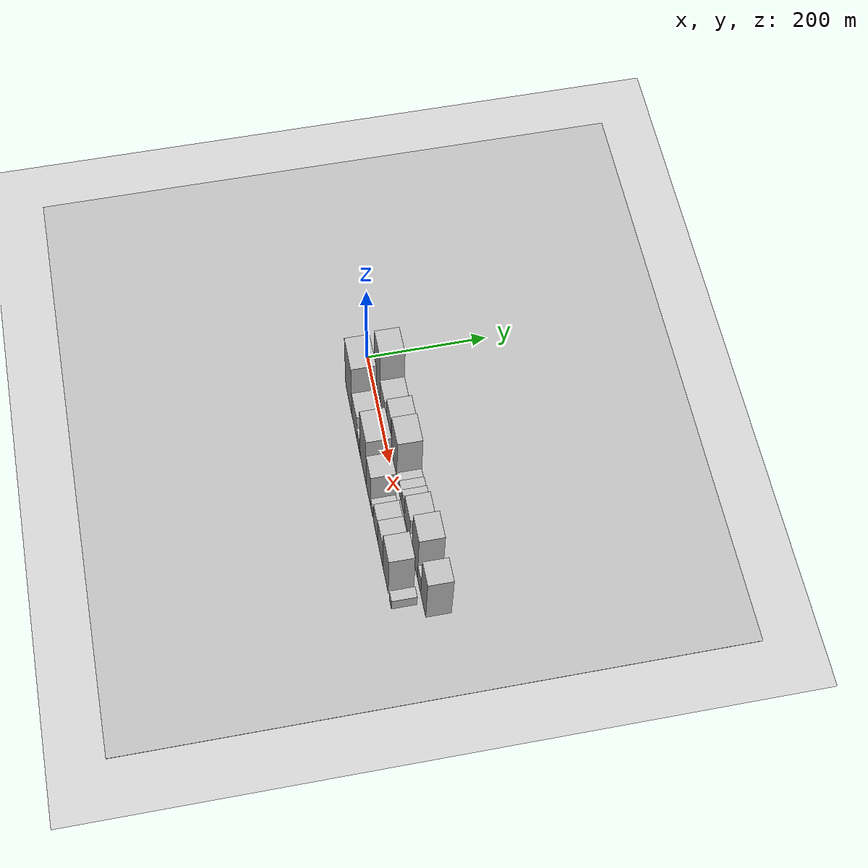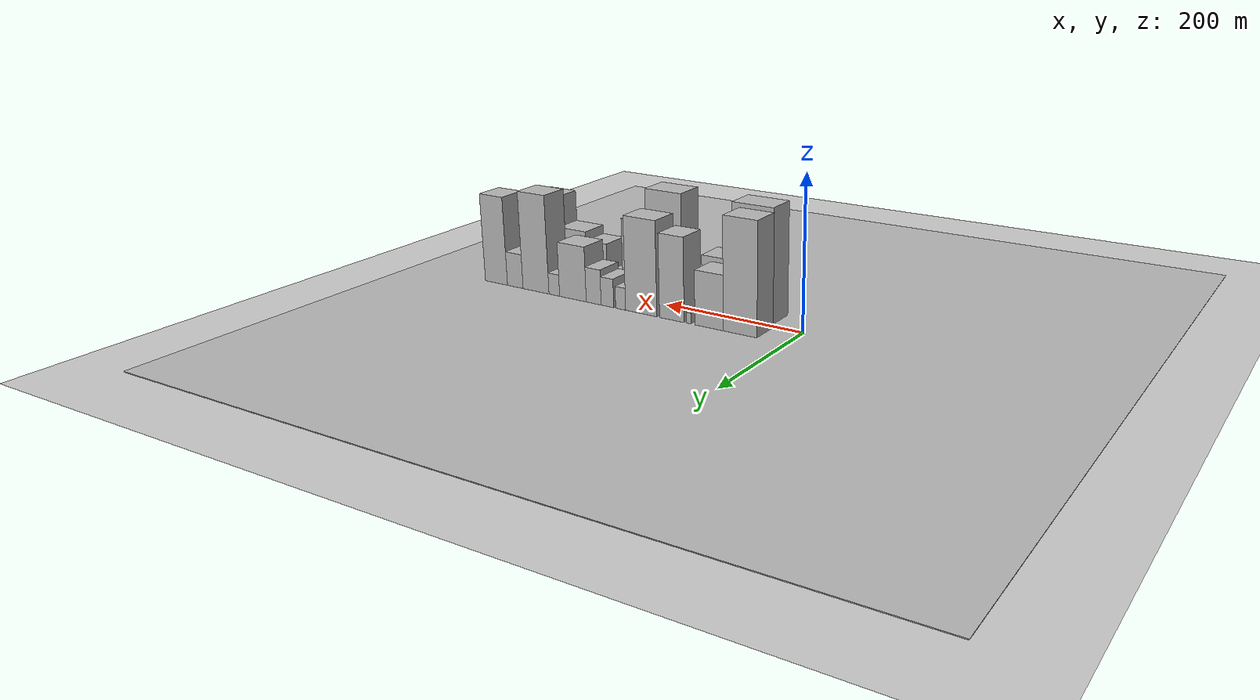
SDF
<?xml version="1.0" encoding="utf-8"?>

<sdf version="1.6">

   <world name="default">

      <gui fullscreen="0">

         <camera name="user_camera">

            <pose>-15 0 4.57585 0 0 0</pose>

            <view_controller>orbit</view_controller>

         </camera>

      </gui>

      <scene>

         <sky>

           <clouds>

             <speed>12</speed>

           </clouds>

         </sky>

         <ambient>0.4 0.4 0.4 1</ambient>

         <background>0.7 0.7 0.7 1</background>

         <shadows>1</shadows>

      </scene>

      <gravity>0 0 -9.8066</gravity>

      <magnetic_field>6e-06 2.3e-05 -4.2e-05</magnetic_field>

      <physics default="0" name="default_physics" type="ode">

         <ode>

            <solver>

               <type>quick</type>

               <iters>10</iters>

               <sor>1.0</sor>

               <use_dynamic_moi_rescaling>0</use_dynamic_moi_rescaling>

            </solver>

            <constraints>

               <cfm>0</cfm>

               <erp>0.2</erp>

               <contact_max_correcting_vel>100</contact_max_correcting_vel>

               <contact_surface_layer>0.001</contact_surface_layer>

            </constraints>

         </ode>

         <max_step_size>0.004</max_step_size>

         <real_time_factor>1</real_time_factor>

         <real_time_update_rate>250</real_time_update_rate>

      </physics>

      <light name="sun" type="directional">

         <cast_shadows>1</cast_shadows>

         <pose>0 0 10 0 0 0</pose>

         <diffuse>0.8 0.8 0.8 1</diffuse>

         <specular>0.2 0.2 0.2 1</specular>

         <attenuation>

            <range>1000</range>

            <constant>0.9</constant>

            <linear>0.01</linear>

            <quadratic>0.001</quadratic>

         </attenuation>

         <direction>-0.5 0.1 -0.9</direction>

      </light>

      <include>

         <name>ground_plane_1</name>

         <uri>model://HANNAS_ground_plane</uri>

         <pose>0 0 0  0 0 0</pose>

      </include>

      <include>

         <name>ground_plane_2</name>

         <uri>model://HANNAS_ground_plane</uri>

         <pose>100 0 0  0 0 0</pose>

      </include>

      <model name="building_1">

         <static>1</static>

         <pose frame="">63.9267 24.5000 0 0.000000 0.000000 1.570796</pose>

         <link name="link">

            <pose frame="">0 0 73.50 0 0 0</pose>

            <collision name="collision">

               <geometry>

                  <box>

                     <size>40.0000 47.8533 147.0000</size>

                  </box>

               </geometry>

               <max_contacts>10</max_contacts>

               <surface>

                  <contact>

                     <ode/>

                  </contact>

                  <bounce/>

                  <friction>

                     <torsional>

                        <ode/>

                     </torsional>

                     <ode/>

                  </friction>

               </surface>

            </collision>

            <visual name="visual">

               <cast_shadows>0</cast_shadows>

               <geometry>

                  <box>

                     <size>40.0000 47.8533 147.0000</size>

                  </box>

               </geometry>

               <material>

                  <script>

                     <uri>model://HANNAS_wall/materials/scripts</uri>

                     <uri>model://HANNAS_wall/materials/textures</uri>

                     <name>vrc/HANNAS_wall</name>

                  </script>

               </material>

            </visual>

            <self_collide>0</self_collide>

            <enable_wind>0</enable_wind>

            <kinematic>0</kinematic>

         </link>

      </model>

      <model name="building_2">

         <static>1</static>

         <pose frame="">108.2276 24.5000 0 0.000000 0.000000 1.570796</pose>

         <link name="link">

            <pose frame="">0 0 36.00 0 0 0</pose>

            <collision name="collision">

               <geometry>

                  <box>

                     <size>40.0000 40.7487 72.0000</size>

                  </box>

               </geometry>

               <max_contacts>10</max_contacts>

               <surface>

                  <contact>

                     <ode/>

                  </contact>

                  <bounce/>

                  <friction>

                     <torsional>

                        <ode/>

                     </torsional>

                     <ode/>

                  </friction>

               </surface>

            </collision>

            <visual name="visual">

               <cast_shadows>0</cast_shadows>

               <geometry>

                  <box>

                     <size>40.0000 40.7487 72.0000</size>

                  </box>

               </geometry>

               <material>

                  <script>

                     <uri>model://HANNAS_wall/materials/scripts</uri>

                     <uri>model://HANNAS_wall/materials/textures</uri>

                     <name>vrc/HANNAS_wall</name>

                  </script>

               </material>

            </visual>

            <self_collide>0</self_collide>

            <enable_wind>0</enable_wind>

            <kinematic>0</kinematic>

         </link>

      </model>

      <model name="building_3">

         <static>1</static>

         <pose frame="">138.0149 24.5000 0 0.000000 0.000000 1.570796</pose>

         <link name="link">

            <pose frame="">0 0 7.50 0 0 0</pose>

            <collision name="collision">

               <geometry>

                  <box>

                     <size>40.0000 6.8259 15.0000</size>

                  </box>

               </geometry>

               <max_contacts>10</max_contacts>

               <surface>

                  <contact>

                     <ode/>

                  </contact>

                  <bounce/>

                  <friction>

                     <torsional>

                        <ode/>

                     </torsional>

                     <ode/>

                  </friction>

               </surface>

            </collision>

            <visual name="visual">

               <cast_shadows>0</cast_shadows>

               <geometry>

                  <box>

                     <size>40.0000 6.8259 15.0000</size>

                  </box>

               </geometry>

               <material>

                  <script>

                     <uri>model://HANNAS_wall/materials/scripts</uri>

                     <uri>model://HANNAS_wall/materials/textures</uri>

                     <name>vrc/HANNAS_wall</name>

                  </script>

               </material>

            </visual>

            <self_collide>0</self_collide>

            <enable_wind>0</enable_wind>

            <kinematic>0</kinematic>

         </link>

      </model>

      <model name="building_4">

         <static>1</static>

         <pose frame="">162.8270 24.5000 0 0.000000 0.000000 1.570796</pose>

         <link name="link">

            <pose frame="">0 0 55.50 0 0 0</pose>

            <collision name="collision">

               <geometry>

                  <box>

                     <size>40.0000 36.7982 111.0000</size>

                  </box>

               </geometry>

               <max_contacts>10</max_contacts>

               <surface>

                  <contact>

                     <ode/>

                  </contact>

                  <bounce/>

                  <friction>

                     <torsional>

                        <ode/>

                     </torsional>

                     <ode/>

                  </friction>

               </surface>

            </collision>

            <visual name="visual">

               <cast_shadows>0</cast_shadows>

               <geometry>

                  <box>

                     <size>40.0000 36.7982 111.0000</size>

                  </box>

               </geometry>

               <material>

                  <script>

                     <uri>model://HANNAS_wall/materials/scripts</uri>

                     <uri>model://HANNAS_wall/materials/textures</uri>

                     <name>vrc/HANNAS_wall</name>

                  </script>

               </material>

            </visual>

            <self_collide>0</self_collide>

            <enable_wind>0</enable_wind>

            <kinematic>0</kinematic>

         </link>

      </model>

      <model name="building_5">

         <static>1</static>

         <pose frame="">209.3767 24.5000 0 0.000000 0.000000 1.570796</pose>

         <link name="link">

            <pose frame="">0 0 63.00 0 0 0</pose>

            <collision name="collision">

               <geometry>

                  <box>

                     <size>40.0000 48.3013 126.0000</size>

                  </box>

               </geometry>

               <max_contacts>10</max_contacts>

               <surface>

                  <contact>

                     <ode/>

                  </contact>

                  <bounce/>

                  <friction>

                     <torsional>

                        <ode/>

                     </torsional>

                     <ode/>

                  </friction>

               </surface>

            </collision>

            <visual name="visual">

               <cast_shadows>0</cast_shadows>

               <geometry>

                  <box>

                     <size>40.0000 48.3013 126.0000</size>

                  </box>

               </geometry>

               <material>

                  <script>

                     <uri>model://HANNAS_wall/materials/scripts</uri>

                     <uri>model://HANNAS_wall/materials/textures</uri>

                     <name>vrc/HANNAS_wall</name>

                  </script>

               </material>

            </visual>

            <self_collide>0</self_collide>

            <enable_wind>0</enable_wind>

            <kinematic>0</kinematic>

         </link>

      </model>

      <model name="building_6">

         <static>1</static>

         <pose frame="">241.3622 24.5000 0 0.000000 0.000000 1.570796</pose>

         <link name="link">

            <pose frame="">0 0 15.00 0 0 0</pose>

            <collision name="collision">

               <geometry>

                  <box>

                     <size>40.0000 15.6695 30.0000</size>

                  </box>

               </geometry>

               <max_contacts>10</max_contacts>

               <surface>

                  <contact>

                     <ode/>

                  </contact>

                  <bounce/>

                  <friction>

                     <torsional>

                        <ode/>

                     </torsional>

                     <ode/>

                  </friction>

               </surface>

            </collision>

            <visual name="visual">

               <cast_shadows>0</cast_shadows>

               <geometry>

                  <box>

                     <size>40.0000 15.6695 30.0000</size>

                  </box>

               </geometry>

               <material>

                  <script>

                     <uri>model://HANNAS_wall/materials/scripts</uri>

                     <uri>model://HANNAS_wall/materials/textures</uri>

                     <name>vrc/HANNAS_wall</name>

                  </script>

               </material>

            </visual>

            <self_collide>0</self_collide>

            <enable_wind>0</enable_wind>

            <kinematic>0</kinematic>

         </link>

      </model>

      <model name="building_7">

         <static>1</static>

         <pose frame="">262.2853 24.5000 0 0.000000 0.000000 1.570796</pose>

         <link name="link">

            <pose frame="">0 0 19.50 0 0 0</pose>

            <collision name="collision">

               <geometry>

                  <box>

                     <size>40.0000 20.1768 39.0000</size>

                  </box>

               </geometry>

               <max_contacts>10</max_contacts>

               <surface>

                  <contact>

                     <ode/>

                  </contact>

                  <bounce/>

                  <friction>

                     <torsional>

                        <ode/>

                     </torsional>

                     <ode/>

                  </friction>

               </surface>

            </collision>

            <visual name="visual">

               <cast_shadows>0</cast_shadows>

               <geometry>

                  <box>

                     <size>40.0000 20.1768 39.0000</size>

                  </box>

               </geometry>

               <material>

                  <script>

                     <uri>model://HANNAS_wall/materials/scripts</uri>

                     <uri>model://HANNAS_wall/materials/textures</uri>

                     <name>vrc/HANNAS_wall</name>

                  </script>

               </material>

            </visual>

            <self_collide>0</self_collide>

            <enable_wind>0</enable_wind>

            <kinematic>0</kinematic>

         </link>

      </model>

      <model name="building_8">

         <static>1</static>

         <pose frame="">284.4079 24.5000 0 0.000000 0.000000 1.570796</pose>

         <link name="link">

            <pose frame="">0 0 24.00 0 0 0</pose>

            <collision name="collision">

               <geometry>

                  <box>

                     <size>40.0000 24.0683 48.0000</size>

                  </box>

               </geometry>

               <max_contacts>10</max_contacts>

               <surface>

                  <contact>

                     <ode/>

                  </contact>

                  <bounce/>

                  <friction>

                     <torsional>

                        <ode/>

                     </torsional>

                     <ode/>

                  </friction>

               </surface>

            </collision>

            <visual name="visual">

               <cast_shadows>0</cast_shadows>

               <geometry>

                  <box>

                     <size>40.0000 24.0683 48.0000</size>

                  </box>

               </geometry>

               <material>

                  <script>

                     <uri>model://HANNAS_wall/materials/scripts</uri>

                     <uri>model://HANNAS_wall/materials/textures</uri>

                     <name>vrc/HANNAS_wall</name>

                  </script>

               </material>

            </visual>

            <self_collide>0</self_collide>

            <enable_wind>0</enable_wind>

            <kinematic>0</kinematic>

         </link>

      </model>

      <model name="building_9">

         <static>1</static>

         <pose frame="">318.3922 24.5000 0 0.000000 0.000000 1.570796</pose>

         <link name="link">

            <pose frame="">0 0 37.50 0 0 0</pose>

            <collision name="collision">

               <geometry>

                  <box>

                     <size>40.0000 43.9003 75.0000</size>

                  </box>

               </geometry>

               <max_contacts>10</max_contacts>

               <surface>

                  <contact>

                     <ode/>

                  </contact>

                  <bounce/>

                  <friction>

                     <torsional>

                        <ode/>

                     </torsional>

                     <ode/>

                  </friction>

               </surface>

            </collision>

            <visual name="visual">

               <cast_shadows>0</cast_shadows>

               <geometry>

                  <box>

                     <size>40.0000 43.9003 75.0000</size>

                  </box>

               </geometry>

               <material>

                  <script>

                     <uri>model://HANNAS_wall/materials/scripts</uri>

                     <uri>model://HANNAS_wall/materials/textures</uri>

                     <name>vrc/HANNAS_wall</name>

                  </script>

               </material>

            </visual>

            <self_collide>0</self_collide>

            <enable_wind>0</enable_wind>

            <kinematic>0</kinematic>

         </link>

      </model>

      <model name="building_10">

         <static>1</static>

         <pose frame="">349.2791 24.5000 0 0.000000 0.000000 1.570796</pose>

         <link name="link">

            <pose frame="">0 0 15.00 0 0 0</pose>

            <collision name="collision">

               <geometry>

                  <box>

                     <size>40.0000 17.8735 30.0000</size>

                  </box>

               </geometry>

               <max_contacts>10</max_contacts>

               <surface>

                  <contact>

                     <ode/>

                  </contact>

                  <bounce/>

                  <friction>

                     <torsional>

                        <ode/>

                     </torsional>

                     <ode/>

                  </friction>

               </surface>

            </collision>

            <visual name="visual">

               <cast_shadows>0</cast_shadows>

               <geometry>

                  <box>

                     <size>40.0000 17.8735 30.0000</size>

                  </box>

               </geometry>

               <material>

                  <script>

                     <uri>model://HANNAS_wall/materials/scripts</uri>

                     <uri>model://HANNAS_wall/materials/textures</uri>

                     <name>vrc/HANNAS_wall</name>

                  </script>

               </material>

            </visual>

            <self_collide>0</self_collide>

            <enable_wind>0</enable_wind>

            <kinematic>0</kinematic>

         </link>

      </model>

      <model name="building_11">

         <static>1</static>

         <pose frame="">380.3897 24.5000 0 0.000000 0.000000 1.570796</pose>

         <link name="link">

            <pose frame="">0 0 67.50 0 0 0</pose>

            <collision name="collision">

               <geometry>

                  <box>

                     <size>40.0000 44.3476 135.0000</size>

                  </box>

               </geometry>

               <max_contacts>10</max_contacts>

               <surface>

                  <contact>

                     <ode/>

                  </contact>

                  <bounce/>

                  <friction>

                     <torsional>

                        <ode/>

                     </torsional>

                     <ode/>

                  </friction>

               </surface>

            </collision>

            <visual name="visual">

               <cast_shadows>0</cast_shadows>

               <geometry>

                  <box>

                     <size>40.0000 44.3476 135.0000</size>

                  </box>

               </geometry>

               <material>

                  <script>

                     <uri>model://HANNAS_wall/materials/scripts</uri>

                     <uri>model://HANNAS_wall/materials/textures</uri>

                     <name>vrc/HANNAS_wall</name>

                  </script>

               </material>

            </visual>

            <self_collide>0</self_collide>

            <enable_wind>0</enable_wind>

            <kinematic>0</kinematic>

         </link>

      </model>

      <model name="building_12">

         <static>1</static>

         <pose frame="">416.1252 24.5000 0 0.000000 0.000000 1.570796</pose>

         <link name="link">

            <pose frame="">0 0 24.00 0 0 0</pose>

            <collision name="collision">

               <geometry>

                  <box>

                     <size>40.0000 27.1234 48.0000</size>

                  </box>

               </geometry>

               <max_contacts>10</max_contacts>

               <surface>

                  <contact>

                     <ode/>

                  </contact>

                  <bounce/>

                  <friction>

                     <torsional>

                        <ode/>

                     </torsional>

                     <ode/>

                  </friction>

               </surface>

            </collision>

            <visual name="visual">

               <cast_shadows>0</cast_shadows>

               <geometry>

                  <box>

                     <size>40.0000 27.1234 48.0000</size>

                  </box>

               </geometry>

               <material>

                  <script>

                     <uri>model://HANNAS_wall/materials/scripts</uri>

                     <uri>model://HANNAS_wall/materials/textures</uri>

                     <name>vrc/HANNAS_wall</name>

                  </script>

               </material>

            </visual>

            <self_collide>0</self_collide>

            <enable_wind>0</enable_wind>

            <kinematic>0</kinematic>

         </link>

      </model>

      <model name="building_13">

         <static>1</static>

         <pose frame="">449.2854 24.5000 0 0.000000 0.000000 1.570796</pose>

         <link name="link">

            <pose frame="">0 0 61.50 0 0 0</pose>

            <collision name="collision">

               <geometry>

                  <box>

                     <size>40.0000 39.1971 123.0000</size>

                  </box>

               </geometry>

               <max_contacts>10</max_contacts>

               <surface>

                  <contact>

                     <ode/>

                  </contact>

                  <bounce/>

                  <friction>

                     <torsional>

                        <ode/>

                     </torsional>

                     <ode/>

                  </friction>

               </surface>

            </collision>

            <visual name="visual">

               <cast_shadows>0</cast_shadows>

               <geometry>

                  <box>

                     <size>40.0000 39.1971 123.0000</size>

                  </box>

               </geometry>

               <material>

                  <script>

                     <uri>model://HANNAS_wall/materials/scripts</uri>

                     <uri>model://HANNAS_wall/materials/textures</uri>

                     <name>vrc/HANNAS_wall</name>

                  </script>

               </material>

            </visual>

            <self_collide>0</self_collide>

            <enable_wind>0</enable_wind>

            <kinematic>0</kinematic>

         </link>

      </model>

      <model name="building_14">

         <static>1</static>

         <pose frame="">75.1057 -24.5000 0 0.000000 0.000000 1.570796</pose>

         <link name="link">

            <pose frame="">0 0 75.00 0 0 0</pose>

            <collision name="collision">

               <geometry>

                  <box>

                     <size>40.0000 58.2113 150.0000</size>

                  </box>

               </geometry>

               <max_contacts>10</max_contacts>

               <surface>

                  <contact>

                     <ode/>

                  </contact>

                  <bounce/>

                  <friction>

                     <torsional>

                        <ode/>

                     </torsional>

                     <ode/>

                  </friction>

               </surface>

            </collision>

            <visual name="visual">

               <cast_shadows>0</cast_shadows>

               <geometry>

                  <box>

                     <size>40.0000 58.2113 150.0000</size>

                  </box>

               </geometry>

               <material>

                  <script>

                     <uri>model://HANNAS_wall/materials/scripts</uri>

                     <uri>model://HANNAS_wall/materials/textures</uri>

                     <name>vrc/HANNAS_wall</name>

                  </script>

               </material>

            </visual>

            <self_collide>0</self_collide>

            <enable_wind>0</enable_wind>

            <kinematic>0</kinematic>

         </link>

      </model>

      <model name="building_15">

         <static>1</static>

         <pose frame="">126.5491 -24.5000 0 0.000000 0.000000 1.570796</pose>

         <link name="link">

            <pose frame="">0 0 37.50 0 0 0</pose>

            <collision name="collision">

               <geometry>

                  <box>

                     <size>40.0000 44.6755 75.0000</size>

                  </box>

               </geometry>

               <max_contacts>10</max_contacts>

               <surface>

                  <contact>

                     <ode/>

                  </contact>

                  <bounce/>

                  <friction>

                     <torsional>

                        <ode/>

                     </torsional>

                     <ode/>

                  </friction>

               </surface>

            </collision>

            <visual name="visual">

               <cast_shadows>0</cast_shadows>

               <geometry>

                  <box>

                     <size>40.0000 44.6755 75.0000</size>

                  </box>

               </geometry>

               <material>

                  <script>

                     <uri>model://HANNAS_wall/materials/scripts</uri>

                     <uri>model://HANNAS_wall/materials/textures</uri>

                     <name>vrc/HANNAS_wall</name>

                  </script>

               </material>

            </visual>

            <self_collide>0</self_collide>

            <enable_wind>0</enable_wind>

            <kinematic>0</kinematic>

         </link>

      </model>

      <model name="building_16">

         <static>1</static>

         <pose frame="">159.6365 -24.5000 0 0.000000 0.000000 1.570796</pose>

         <link name="link">

            <pose frame="">0 0 19.50 0 0 0</pose>

            <collision name="collision">

               <geometry>

                  <box>

                     <size>40.0000 21.4994 39.0000</size>

                  </box>

               </geometry>

               <max_contacts>10</max_contacts>

               <surface>

                  <contact>

                     <ode/>

                  </contact>

                  <bounce/>

                  <friction>

                     <torsional>

                        <ode/>

                     </torsional>

                     <ode/>

                  </friction>

               </surface>

            </collision>

            <visual name="visual">

               <cast_shadows>0</cast_shadows>

               <geometry>

                  <box>

                     <size>40.0000 21.4994 39.0000</size>

                  </box>

               </geometry>

               <material>

                  <script>

                     <uri>model://HANNAS_wall/materials/scripts</uri>

                     <uri>model://HANNAS_wall/materials/textures</uri>

                     <name>vrc/HANNAS_wall</name>

                  </script>

               </material>

            </visual>

            <self_collide>0</self_collide>

            <enable_wind>0</enable_wind>

            <kinematic>0</kinematic>

         </link>

      </model>

      <model name="building_17">

         <static>1</static>

         <pose frame="">174.6930 -24.5000 0 0.000000 0.000000 1.570796</pose>

         <link name="link">

            <pose frame="">0 0 10.50 0 0 0</pose>

            <collision name="collision">

               <geometry>

                  <box>

                     <size>40.0000 8.6135 21.0000</size>

                  </box>

               </geometry>

               <max_contacts>10</max_contacts>

               <surface>

                  <contact>

                     <ode/>

                  </contact>

                  <bounce/>

                  <friction>

                     <torsional>

                        <ode/>

                     </torsional>

                     <ode/>

                  </friction>

               </surface>

            </collision>

            <visual name="visual">

               <cast_shadows>0</cast_shadows>

               <geometry>

                  <box>

                     <size>40.0000 8.6135 21.0000</size>

                  </box>

               </geometry>

               <material>

                  <script>

                     <uri>model://HANNAS_wall/materials/scripts</uri>

                     <uri>model://HANNAS_wall/materials/textures</uri>

                     <name>vrc/HANNAS_wall</name>

                  </script>

               </material>

            </visual>

            <self_collide>0</self_collide>

            <enable_wind>0</enable_wind>

            <kinematic>0</kinematic>

         </link>

      </model>

      <model name="building_18">

         <static>1</static>

         <pose frame="">206.1989 -24.5000 0 0.000000 0.000000 1.570796</pose>

         <link name="link">

            <pose frame="">0 0 75.00 0 0 0</pose>

            <collision name="collision">

               <geometry>

                  <box>

                     <size>40.0000 54.3985 150.0000</size>

                  </box>

               </geometry>

               <max_contacts>10</max_contacts>

               <surface>

                  <contact>

                     <ode/>

                  </contact>

                  <bounce/>

                  <friction>

                     <torsional>

                        <ode/>

                     </torsional>

                     <ode/>

                  </friction>

               </surface>

            </collision>

            <visual name="visual">

               <cast_shadows>0</cast_shadows>

               <geometry>

                  <box>

                     <size>40.0000 54.3985 150.0000</size>

                  </box>

               </geometry>

               <material>

                  <script>

                     <uri>model://HANNAS_wall/materials/scripts</uri>

                     <uri>model://HANNAS_wall/materials/textures</uri>

                     <name>vrc/HANNAS_wall</name>

                  </script>

               </material>

            </visual>

            <self_collide>0</self_collide>

            <enable_wind>0</enable_wind>

            <kinematic>0</kinematic>

         </link>

      </model>

      <model name="building_19">

         <static>1</static>

         <pose frame="">252.7732 -24.5000 0 0.000000 0.000000 1.570796</pose>

         <link name="link">

            <pose frame="">0 0 52.50 0 0 0</pose>

            <collision name="collision">

               <geometry>

                  <box>

                     <size>40.0000 38.7502 105.0000</size>

                  </box>

               </geometry>

               <max_contacts>10</max_contacts>

               <surface>

                  <contact>

                     <ode/>

                  </contact>

                  <bounce/>

                  <friction>

                     <torsional>

                        <ode/>

                     </torsional>

                     <ode/>

                  </friction>

               </surface>

            </collision>

            <visual name="visual">

               <cast_shadows>0</cast_shadows>

               <geometry>

                  <box>

                     <size>40.0000 38.7502 105.0000</size>

                  </box>

               </geometry>

               <material>

                  <script>

                     <uri>model://HANNAS_wall/materials/scripts</uri>

                     <uri>model://HANNAS_wall/materials/textures</uri>

                     <name>vrc/HANNAS_wall</name>

                  </script>

               </material>

            </visual>

            <self_collide>0</self_collide>

            <enable_wind>0</enable_wind>

            <kinematic>0</kinematic>

         </link>

      </model>

      <model name="building_20">

         <static>1</static>

         <pose frame="">280.4021 -24.5000 0 0.000000 0.000000 1.570796</pose>

         <link name="link">

            <pose frame="">0 0 16.50 0 0 0</pose>

            <collision name="collision">

               <geometry>

                  <box>

                     <size>40.0000 16.5075 33.0000</size>

                  </box>

               </geometry>

               <max_contacts>10</max_contacts>

               <surface>

                  <contact>

                     <ode/>

                  </contact>

                  <bounce/>

                  <friction>

                     <torsional>

                        <ode/>

                     </torsional>

                     <ode/>

                  </friction>

               </surface>

            </collision>

            <visual name="visual">

               <cast_shadows>0</cast_shadows>

               <geometry>

                  <box>

                     <size>40.0000 16.5075 33.0000</size>

                  </box>

               </geometry>

               <material>

                  <script>

                     <uri>model://HANNAS_wall/materials/scripts</uri>

                     <uri>model://HANNAS_wall/materials/textures</uri>

                     <name>vrc/HANNAS_wall</name>

                  </script>

               </material>

            </visual>

            <self_collide>0</self_collide>

            <enable_wind>0</enable_wind>

            <kinematic>0</kinematic>

         </link>

      </model>

      <model name="building_21">

         <static>1</static>

         <pose frame="">314.3573 -24.5000 0 0.000000 0.000000 1.570796</pose>

         <link name="link">

            <pose frame="">0 0 33.00 0 0 0</pose>

            <collision name="collision">

               <geometry>

                  <box>

                     <size>40.0000 33.4030 66.0000</size>

                  </box>

               </geometry>

               <max_contacts>10</max_contacts>

               <surface>

                  <contact>

                     <ode/>

                  </contact>

                  <bounce/>

                  <friction>

                     <torsional>

                        <ode/>

                     </torsional>

                     <ode/>

                  </friction>

               </surface>

            </collision>

            <visual name="visual">

               <cast_shadows>0</cast_shadows>

               <geometry>

                  <box>

                     <size>40.0000 33.4030 66.0000</size>

                  </box>

               </geometry>

               <material>

                  <script>

                     <uri>model://HANNAS_wall/materials/scripts</uri>

                     <uri>model://HANNAS_wall/materials/textures</uri>

                     <name>vrc/HANNAS_wall</name>

                  </script>

               </material>

            </visual>

            <self_collide>0</self_collide>

            <enable_wind>0</enable_wind>

            <kinematic>0</kinematic>

         </link>

      </model>

      <model name="building_22">

         <static>1</static>

         <pose frame="">353.6243 -24.5000 0 0.000000 0.000000 1.570796</pose>

         <link name="link">

            <pose frame="">0 0 39.00 0 0 0</pose>

            <collision name="collision">

               <geometry>

                  <box>

                     <size>40.0000 45.1310 78.0000</size>

                  </box>

               </geometry>

               <max_contacts>10</max_contacts>

               <surface>

                  <contact>

                     <ode/>

                  </contact>

                  <bounce/>

                  <friction>

                     <torsional>

                        <ode/>

                     </torsional>

                     <ode/>

                  </friction>

               </surface>

            </collision>

            <visual name="visual">

               <cast_shadows>0</cast_shadows>

               <geometry>

                  <box>

                     <size>40.0000 45.1310 78.0000</size>

                  </box>

               </geometry>

               <material>

                  <script>

                     <uri>model://HANNAS_wall/materials/scripts</uri>

                     <uri>model://HANNAS_wall/materials/textures</uri>

                     <name>vrc/HANNAS_wall</name>

                  </script>

               </material>

            </visual>

            <self_collide>0</self_collide>

            <enable_wind>0</enable_wind>

            <kinematic>0</kinematic>

         </link>

      </model>

      <model name="building_23">

         <static>1</static>

         <pose frame="">398.2551 -24.5000 0 0.000000 0.000000 1.570796</pose>

         <link name="link">

            <pose frame="">0 0 60.00 0 0 0</pose>

            <collision name="collision">

               <geometry>

                  <box>

                     <size>40.0000 44.1307 120.0000</size>

                  </box>

               </geometry>

               <max_contacts>10</max_contacts>

               <surface>

                  <contact>

                     <ode/>

                  </contact>

                  <bounce/>

                  <friction>

                     <torsional>

                        <ode/>

                     </torsional>

                     <ode/>

                  </friction>

               </surface>

            </collision>

            <visual name="visual">

               <cast_shadows>0</cast_shadows>

               <geometry>

                  <box>

                     <size>40.0000 44.1307 120.0000</size>

                  </box>

               </geometry>

               <material>

                  <script>

                     <uri>model://HANNAS_wall/materials/scripts</uri>

                     <uri>model://HANNAS_wall/materials/textures</uri>

                     <name>vrc/HANNAS_wall</name>

                  </script>

               </material>

            </visual>

            <self_collide>0</self_collide>

            <enable_wind>0</enable_wind>

            <kinematic>0</kinematic>

         </link>

      </model>

      <model name="building_24">

         <static>1</static>

         <pose frame="">437.1681 -24.5000 0 0.000000 0.000000 1.570796</pose>

         <link name="link">

            <pose frame="">0 0 15.00 0 0 0</pose>

            <collision name="collision">

               <geometry>

                  <box>

                     <size>40.0000 17.6953 30.0000</size>

                  </box>

               </geometry>

               <max_contacts>10</max_contacts>

               <surface>

                  <contact>

                     <ode/>

                  </contact>

                  <bounce/>

                  <friction>

                     <torsional>

                        <ode/>

                     </torsional>

                     <ode/>

                  </friction>

               </surface>

            </collision>

            <visual name="visual">

               <cast_shadows>0</cast_shadows>

               <geometry>

                  <box>

                     <size>40.0000 17.6953 30.0000</size>

                  </box>

               </geometry>

               <material>

                  <script>

                     <uri>model://HANNAS_wall/materials/scripts</uri>

                     <uri>model://HANNAS_wall/materials/textures</uri>

                     <name>vrc/HANNAS_wall</name>

                  </script>

               </material>

            </visual>

            <self_collide>0</self_collide>

            <enable_wind>0</enable_wind>

            <kinematic>0</kinematic>

         </link>

      </model>

   </world>

</sdf>

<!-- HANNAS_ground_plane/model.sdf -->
<sdf version="1.4">
<model name="HANNAS_ground_plane">
  <static>true</static>
    <link name="link">
      <collision name="collision">
        <geometry>
          <plane>
            <normal>0 0 1</normal>
            <size>1000 1000</size>
          </plane>
        </geometry>
        <surface>
          <friction>
            <ode>
              <mu>100</mu>
              <mu2>50</mu2>
            </ode>
          </friction>
        </surface>
      </collision>
      <visual name="visual">
        <cast_shadows>false</cast_shadows>
        <geometry>
          <plane>
            <normal>0 0 1</normal>
            <size>1000 1000</size>
          </plane>
        </geometry>
        <material>
          <script>
            <uri>model://HANNAS_ground_plane/materials/scripts/HANNAS_ground_plane.material</uri>
	    <uri>model://HANNAS_ground_plane/materials/textures</uri>
            <name>HANNASGroundPlane/Image</name>
          </script>
        </material>
      </visual>
    </link>
  </model>
</sdf>
